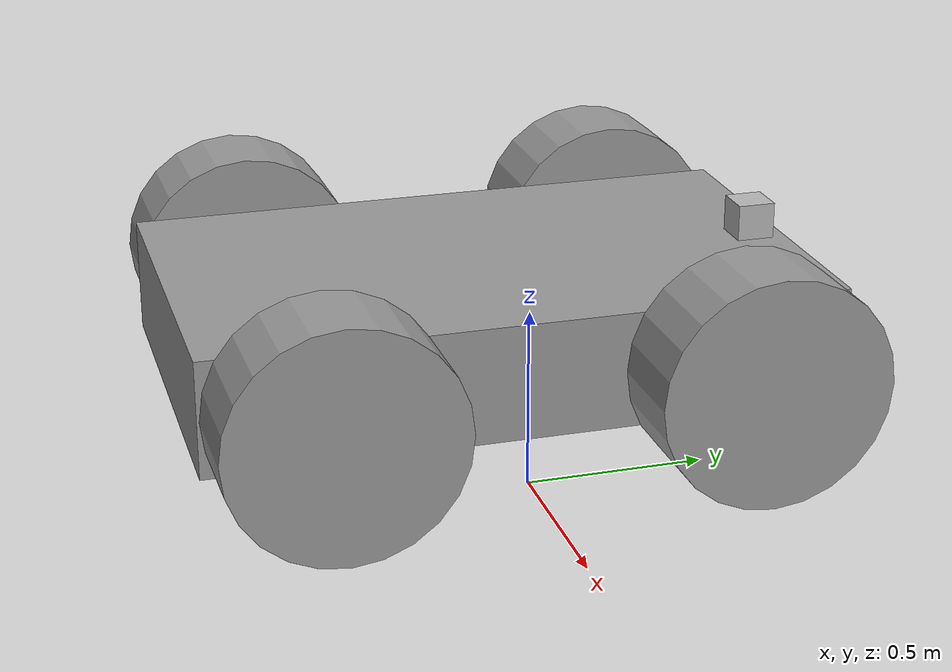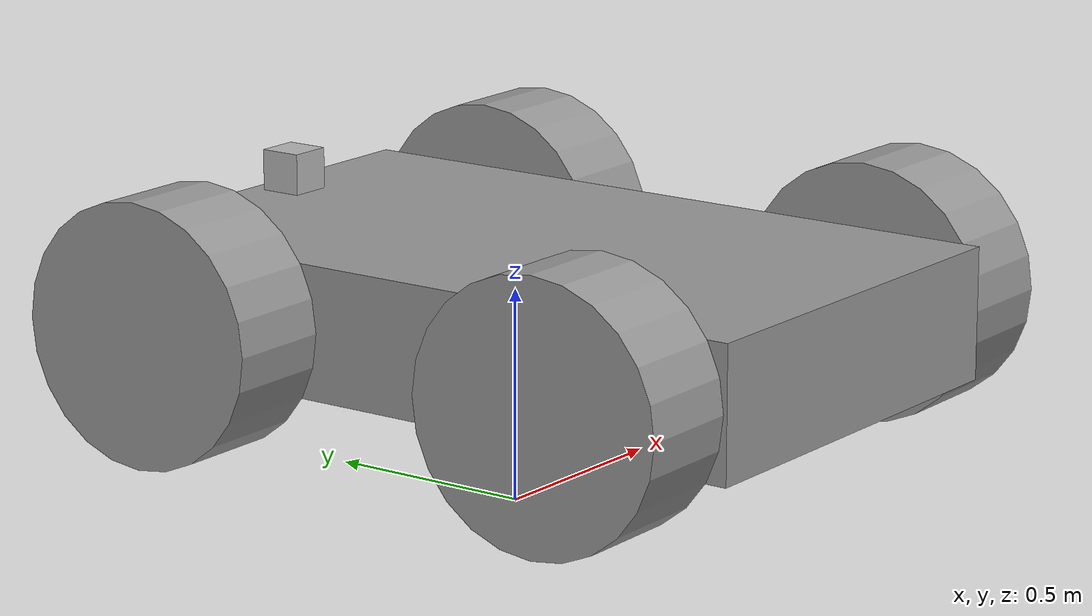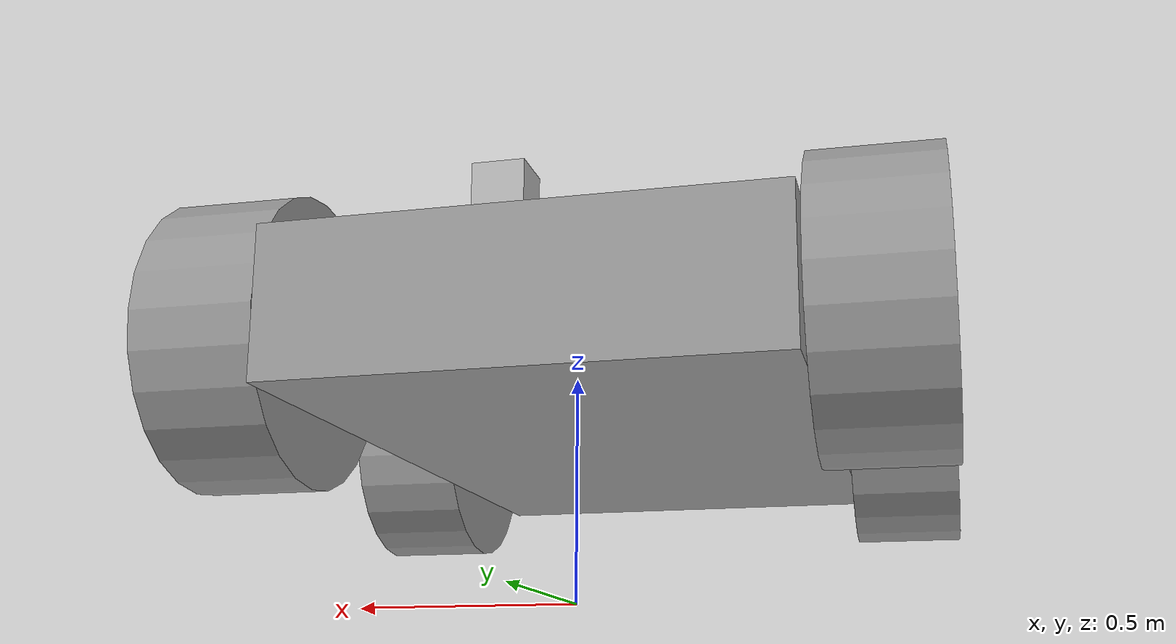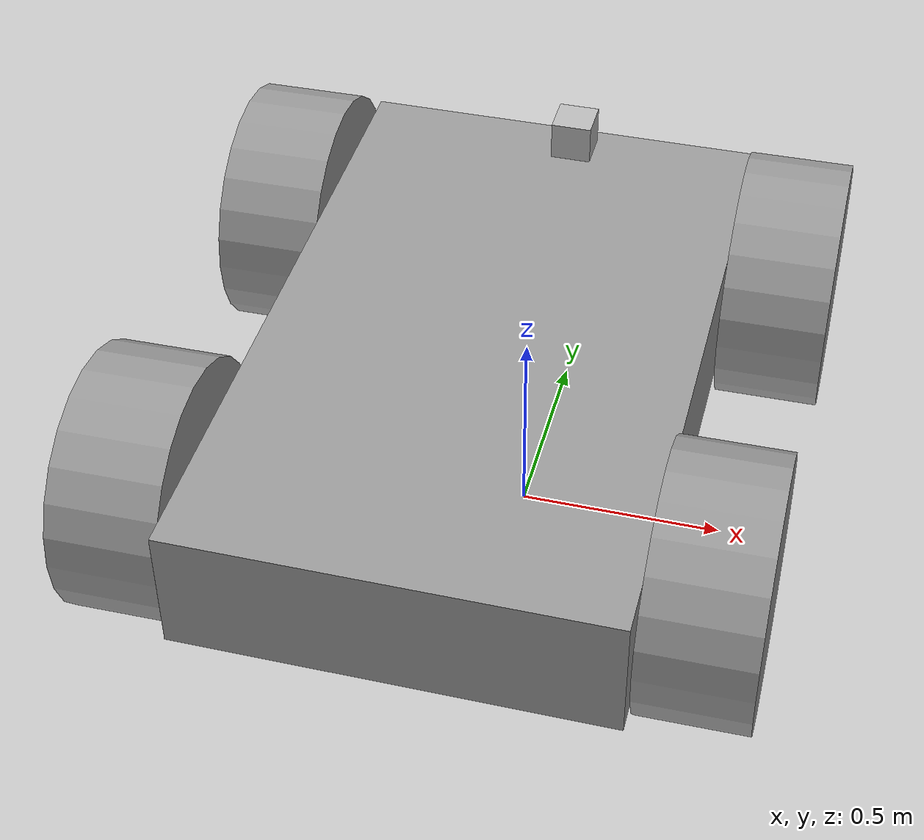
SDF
<?xml version='1.0'?>
<sdf version='1.7'>
  <model name='car-test'>
    <link name='link_2'>
      <inertial>
        <mass>0.506765</mass>
        <inertia>
          <ixx>0.12085</ixx>
          <ixy>0</ixy>
          <ixz>0</ixz>
          <iyy>0.0461514</iyy>
          <iyz>0</iyz>
          <izz>0.159159</izz>
        </inertia>
        <pose>0 0 0 0 -0 0</pose>
      </inertial>
      <pose>-0.068798 -0.11996 0.5 0 -0 0</pose>
      <gravity>1</gravity>
      <self_collide>0</self_collide>
      <kinematic>0</kinematic>
      <enable_wind>0</enable_wind>
      <visual name='visual'>
        <pose>0 0 0 0 -0 0</pose>
        <geometry>
          <box>
            <size>1 1.66398 0.304712</size>
          </box>
        </geometry>
        <material>
          <lighting>1</lighting>
          <script>
            <uri>file://media/materials/scripts/gazebo.material</uri>
            <name>Gazebo/Grey</name>
          </script>
          <shader type='pixel'>
            <normal_map>__default__</normal_map>
          </shader>
          <ambient>0.3 0.3 0.3 1</ambient>
          <diffuse>0.7 0.7 0.7 1</diffuse>
          <specular>0.01 0.01 0.01 1</specular>
          <emissive>0 0 0 1</emissive>
        </material>
        <transparency>0</transparency>
        <cast_shadows>1</cast_shadows>
      </visual>
      <collision name='collision'>
        <laser_retro>0</laser_retro>
        <max_contacts>10</max_contacts>
        <pose>0 0 0 0 -0 0</pose>
        <geometry>
          <box>
            <size>1 1.66398 0.304712</size>
          </box>
        </geometry>
        <surface>
          <friction>
            <ode>
              <mu>1</mu>
              <mu2>1</mu2>
              <fdir1>0 0 0</fdir1>
              <slip1>0</slip1>
              <slip2>0</slip2>
            </ode>
            <torsional>
              <coefficient>1</coefficient>
              <patch_radius>0</patch_radius>
              <surface_radius>0</surface_radius>
              <use_patch_radius>1</use_patch_radius>
              <ode>
                <slip>0</slip>
              </ode>
            </torsional>
          </friction>
          <bounce>
            <restitution_coefficient>0</restitution_coefficient>
            <threshold>1e+06</threshold>
          </bounce>
          <contact>
            <collide_without_contact>0</collide_without_contact>
            <collide_without_contact_bitmask>1</collide_without_contact_bitmask>
            <collide_bitmask>1</collide_bitmask>
            <ode>
              <soft_cfm>0</soft_cfm>
              <soft_erp>0.2</soft_erp>
              <kp>1e+13</kp>
              <kd>1</kd>
              <max_vel>0.01</max_vel>
              <min_depth>0</min_depth>
            </ode>
            <bullet>
              <split_impulse>1</split_impulse>
              <split_impulse_penetration_threshold>-0.01</split_impulse_penetration_threshold>
              <soft_cfm>0</soft_cfm>
              <soft_erp>0.2</soft_erp>
              <kp>1e+13</kp>
              <kd>1</kd>
            </bullet>
          </contact>
        </surface>
      </collision>
    </link>
    <link name='link_3'>
      <inertial>
        <mass>1</mass>
        <inertia>
          <ixx>0.145833</ixx>
          <ixy>0</ixy>
          <ixz>0</ixz>
          <iyy>0.145833</iyy>
          <iyz>0</iyz>
          <izz>0.125</izz>
        </inertia>
        <pose>0 0 0 0 -0 0</pose>
      </inertial>
      <pose>-0.69709 0.41618 0.5 1.57079 -9.6e-05 -1.55974</pose>
      <gravity>1</gravity>
      <self_collide>0</self_collide>
      <kinematic>0</kinematic>
      <enable_wind>0</enable_wind>
      <visual name='visual'>
        <pose>0 0 0 0 -0 0</pose>
        <geometry>
          <cylinder>
            <radius>0.3</radius>
            <length>0.25</length>
          </cylinder>
        </geometry>
        <material>
          <lighting>1</lighting>
          <script>
            <uri>file://media/materials/scripts/gazebo.material</uri>
            <name>Gazebo/Grey</name>
          </script>
          <shader type='pixel'>
            <normal_map>__default__</normal_map>
          </shader>
          <ambient>0.3 0.3 0.3 1</ambient>
          <diffuse>0.7 0.7 0.7 1</diffuse>
          <specular>0.01 0.01 0.01 1</specular>
          <emissive>0 0 0 1</emissive>
        </material>
        <transparency>0</transparency>
        <cast_shadows>1</cast_shadows>
      </visual>
      <collision name='collision'>
        <laser_retro>0</laser_retro>
        <max_contacts>10</max_contacts>
        <pose>0 0 0 0 -0 0</pose>
        <geometry>
          <cylinder>
            <radius>0.3</radius>
            <length>0.25</length>
          </cylinder>
        </geometry>
        <surface>
          <friction>
            <ode>
              <mu>1</mu>
              <mu2>1</mu2>
              <fdir1>0 0 0</fdir1>
              <slip1>0</slip1>
              <slip2>0</slip2>
            </ode>
            <torsional>
              <coefficient>1</coefficient>
              <patch_radius>0</patch_radius>
              <surface_radius>0</surface_radius>
              <use_patch_radius>1</use_patch_radius>
              <ode>
                <slip>0</slip>
              </ode>
            </torsional>
          </friction>
          <bounce>
            <restitution_coefficient>0</restitution_coefficient>
            <threshold>1e+06</threshold>
          </bounce>
          <contact>
            <collide_without_contact>0</collide_without_contact>
            <collide_without_contact_bitmask>1</collide_without_contact_bitmask>
            <collide_bitmask>1</collide_bitmask>
            <ode>
              <soft_cfm>0</soft_cfm>
              <soft_erp>0.2</soft_erp>
              <kp>1e+13</kp>
              <kd>1</kd>
              <max_vel>0.01</max_vel>
              <min_depth>0</min_depth>
            </ode>
            <bullet>
              <split_impulse>1</split_impulse>
              <split_impulse_penetration_threshold>-0.01</split_impulse_penetration_threshold>
              <soft_cfm>0</soft_cfm>
              <soft_erp>0.2</soft_erp>
              <kp>1e+13</kp>
              <kd>1</kd>
            </bullet>
          </contact>
        </surface>
      </collision>
    </link>
    <link name='link_3_clone'>
      <inertial>
        <mass>1</mass>
        <inertia>
          <ixx>0.145833</ixx>
          <ixy>0</ixy>
          <ixz>0</ixz>
          <iyy>0.145833</iyy>
          <iyz>0</iyz>
          <izz>0.125</izz>
        </inertia>
        <pose>0 0 0 0 -0 0</pose>
      </inertial>
      <pose>0.559529 0.41618 0.5 1.57079 -9.6e-05 -1.55974</pose>
      <gravity>1</gravity>
      <self_collide>0</self_collide>
      <kinematic>0</kinematic>
      <enable_wind>0</enable_wind>
      <visual name='visual'>
        <pose>0 0 0 0 -0 0</pose>
        <geometry>
          <cylinder>
            <radius>0.3</radius>
            <length>0.25</length>
          </cylinder>
        </geometry>
        <material>
          <lighting>1</lighting>
          <script>
            <uri>file://media/materials/scripts/gazebo.material</uri>
            <name>Gazebo/Grey</name>
          </script>
          <shader type='pixel'>
            <normal_map>__default__</normal_map>
          </shader>
          <ambient>0.3 0.3 0.3 1</ambient>
          <diffuse>0.7 0.7 0.7 1</diffuse>
          <specular>0.01 0.01 0.01 1</specular>
          <emissive>0 0 0 1</emissive>
        </material>
        <transparency>0</transparency>
        <cast_shadows>1</cast_shadows>
      </visual>
      <collision name='collision'>
        <laser_retro>0</laser_retro>
        <max_contacts>10</max_contacts>
        <pose>0 0 0 0 -0 0</pose>
        <geometry>
          <cylinder>
            <radius>0.3</radius>
            <length>0.25</length>
          </cylinder>
        </geometry>
        <surface>
          <friction>
            <ode>
              <mu>1</mu>
              <mu2>1</mu2>
              <fdir1>0 0 0</fdir1>
              <slip1>0</slip1>
              <slip2>0</slip2>
            </ode>
            <torsional>
              <coefficient>1</coefficient>
              <patch_radius>0</patch_radius>
              <surface_radius>0</surface_radius>
              <use_patch_radius>1</use_patch_radius>
              <ode>
                <slip>0</slip>
              </ode>
            </torsional>
          </friction>
          <bounce>
            <restitution_coefficient>0</restitution_coefficient>
            <threshold>1e+06</threshold>
          </bounce>
          <contact>
            <collide_without_contact>0</collide_without_contact>
            <collide_without_contact_bitmask>1</collide_without_contact_bitmask>
            <collide_bitmask>1</collide_bitmask>
            <ode>
              <soft_cfm>0</soft_cfm>
              <soft_erp>0.2</soft_erp>
              <kp>1e+13</kp>
              <kd>1</kd>
              <max_vel>0.01</max_vel>
              <min_depth>0</min_depth>
            </ode>
            <bullet>
              <split_impulse>1</split_impulse>
              <split_impulse_penetration_threshold>-0.01</split_impulse_penetration_threshold>
              <soft_cfm>0</soft_cfm>
              <soft_erp>0.2</soft_erp>
              <kp>1e+13</kp>
              <kd>1</kd>
            </bullet>
          </contact>
        </surface>
      </collision>
    </link>
    <link name='link_3_clone_clone'>
      <inertial>
        <mass>1</mass>
        <inertia>
          <ixx>0.145833</ixx>
          <ixy>0</ixy>
          <ixz>0</ixz>
          <iyy>0.145833</iyy>
          <iyz>0</iyz>
          <izz>0.125</izz>
        </inertia>
        <pose>0 0 0 0 -0 0</pose>
      </inertial>
      <pose>0.559529 -0.64502 0.5 1.57079 -9.6e-05 -1.55974</pose>
      <gravity>1</gravity>
      <self_collide>0</self_collide>
      <kinematic>0</kinematic>
      <enable_wind>0</enable_wind>
      <visual name='visual'>
        <pose>0 0 0 0 -0 0</pose>
        <geometry>
          <cylinder>
            <radius>0.3</radius>
            <length>0.25</length>
          </cylinder>
        </geometry>
        <material>
          <lighting>1</lighting>
          <script>
            <uri>file://media/materials/scripts/gazebo.material</uri>
            <name>Gazebo/Grey</name>
          </script>
          <shader type='pixel'>
            <normal_map>__default__</normal_map>
          </shader>
          <ambient>0.3 0.3 0.3 1</ambient>
          <diffuse>0.7 0.7 0.7 1</diffuse>
          <specular>0.01 0.01 0.01 1</specular>
          <emissive>0 0 0 1</emissive>
        </material>
        <transparency>0</transparency>
        <cast_shadows>1</cast_shadows>
      </visual>
      <collision name='collision'>
        <laser_retro>0</laser_retro>
        <max_contacts>10</max_contacts>
        <pose>0 0 0 0 -0 0</pose>
        <geometry>
          <cylinder>
            <radius>0.3</radius>
            <length>0.25</length>
          </cylinder>
        </geometry>
        <surface>
          <friction>
            <ode>
              <mu>1</mu>
              <mu2>1</mu2>
              <fdir1>0 0 0</fdir1>
              <slip1>0</slip1>
              <slip2>0</slip2>
            </ode>
            <torsional>
              <coefficient>1</coefficient>
              <patch_radius>0</patch_radius>
              <surface_radius>0</surface_radius>
              <use_patch_radius>1</use_patch_radius>
              <ode>
                <slip>0</slip>
              </ode>
            </torsional>
          </friction>
          <bounce>
            <restitution_coefficient>0</restitution_coefficient>
            <threshold>1e+06</threshold>
          </bounce>
          <contact>
            <collide_without_contact>0</collide_without_contact>
            <collide_without_contact_bitmask>1</collide_without_contact_bitmask>
            <collide_bitmask>1</collide_bitmask>
            <ode>
              <soft_cfm>0</soft_cfm>
              <soft_erp>0.2</soft_erp>
              <kp>1e+13</kp>
              <kd>1</kd>
              <max_vel>0.01</max_vel>
              <min_depth>0</min_depth>
            </ode>
            <bullet>
              <split_impulse>1</split_impulse>
              <split_impulse_penetration_threshold>-0.01</split_impulse_penetration_threshold>
              <soft_cfm>0</soft_cfm>
              <soft_erp>0.2</soft_erp>
              <kp>1e+13</kp>
              <kd>1</kd>
            </bullet>
          </contact>
        </surface>
      </collision>
    </link>
    <link name='link_3_clone_clone_0'>
      <inertial>
        <mass>1</mass>
        <inertia>
          <ixx>0.145833</ixx>
          <ixy>0</ixy>
          <ixz>0</ixz>
          <iyy>0.145833</iyy>
          <iyz>0</iyz>
          <izz>0.125</izz>
        </inertia>
        <pose>0 0 0 0 -0 0</pose>
      </inertial>
      <pose>-0.697092 -0.64502 0.5 1.57079 -9.6e-05 -1.55974</pose>
      <gravity>1</gravity>
      <self_collide>0</self_collide>
      <kinematic>0</kinematic>
      <enable_wind>0</enable_wind>
      <visual name='visual'>
        <pose>0 0 0 0 -0 0</pose>
        <geometry>
          <cylinder>
            <radius>0.3</radius>
            <length>0.25</length>
          </cylinder>
        </geometry>
        <material>
          <lighting>1</lighting>
          <script>
            <uri>file://media/materials/scripts/gazebo.material</uri>
            <name>Gazebo/Grey</name>
          </script>
          <shader type='pixel'>
            <normal_map>__default__</normal_map>
          </shader>
          <ambient>0.3 0.3 0.3 1</ambient>
          <diffuse>0.7 0.7 0.7 1</diffuse>
          <specular>0.01 0.01 0.01 1</specular>
          <emissive>0 0 0 1</emissive>
        </material>
        <transparency>0</transparency>
        <cast_shadows>1</cast_shadows>
      </visual>
      <collision name='collision'>
        <laser_retro>0</laser_retro>
        <max_contacts>10</max_contacts>
        <pose>0 0 0 0 -0 0</pose>
        <geometry>
          <cylinder>
            <radius>0.3</radius>
            <length>0.25</length>
          </cylinder>
        </geometry>
        <surface>
          <friction>
            <ode>
              <mu>1</mu>
              <mu2>1</mu2>
              <fdir1>0 0 0</fdir1>
              <slip1>0</slip1>
              <slip2>0</slip2>
            </ode>
            <torsional>
              <coefficient>1</coefficient>
              <patch_radius>0</patch_radius>
              <surface_radius>0</surface_radius>
              <use_patch_radius>1</use_patch_radius>
              <ode>
                <slip>0</slip>
              </ode>
            </torsional>
          </friction>
          <bounce>
            <restitution_coefficient>0</restitution_coefficient>
            <threshold>1e+06</threshold>
          </bounce>
          <contact>
            <collide_without_contact>0</collide_without_contact>
            <collide_without_contact_bitmask>1</collide_without_contact_bitmask>
            <collide_bitmask>1</collide_bitmask>
            <ode>
              <soft_cfm>0</soft_cfm>
              <soft_erp>0.2</soft_erp>
              <kp>1e+13</kp>
              <kd>1</kd>
              <max_vel>0.01</max_vel>
              <min_depth>0</min_depth>
            </ode>
            <bullet>
              <split_impulse>1</split_impulse>
              <split_impulse_penetration_threshold>-0.01</split_impulse_penetration_threshold>
              <soft_cfm>0</soft_cfm>
              <soft_erp>0.2</soft_erp>
              <kp>1e+13</kp>
              <kd>1</kd>
            </bullet>
          </contact>
        </surface>
      </collision>
    </link>
    <model name='camera'>
      <pose>-0.025266 0.624599 0.69875 0 -0 0</pose>
      <link name='link'>
        <inertial>
          <mass>0.1</mass>
          <inertia>
            <ixx>0.000166667</ixx>
            <iyy>0.000166667</iyy>
            <izz>0.000166667</izz>
            <ixy>0</ixy>
            <ixz>0</ixz>
            <iyz>0</iyz>
          </inertia>
        </inertial>
        <collision name='collision'>
          <geometry>
            <box>
              <size>0.1 0.1 0.1</size>
            </box>
          </geometry>
        </collision>
        <visual name='visual'>
          <geometry>
            <box>
              <size>0.1 0.1 0.1</size>
            </box>
          </geometry>
        </visual>
        <sensor name='camera' type='camera'>
          <camera>
            <horizontal_fov>1.047</horizontal_fov>
            <image>
              <width>320</width>
              <height>240</height>
            </image>
            <clip>
              <near>0.1</near>
              <far>100</far>
            </clip>
          </camera>
          <always_on>1</always_on>
          <update_rate>30</update_rate>
          <visualize>1</visualize>
        </sensor>
      </link>
    </model>
    <joint name='link_2_JOINT_1' type='revolute'>
      <parent>link_2</parent>
      <child>link_3</child>
      <pose>0 0 0 0 -0 0</pose>
      <axis>
        <xyz>0 0 1</xyz>
        <limit>
          <lower>-1.79769e+308</lower>
          <upper>1.79769e+308</upper>
          <effort>-1</effort>
          <velocity>-1</velocity>
        </limit>
        <dynamics>
          <spring_reference>0</spring_reference>
          <spring_stiffness>0</spring_stiffness>
          <damping>0</damping>
          <friction>0</friction>
        </dynamics>
      </axis>
      <physics>
        <ode>
          <limit>
            <cfm>0</cfm>
            <erp>0.2</erp>
          </limit>
          <suspension>
            <cfm>0</cfm>
            <erp>0.2</erp>
          </suspension>
        </ode>
      </physics>
    </joint>
    <joint name='link_2_JOINT_2' type='revolute'>
      <parent>link_2</parent>
      <child>link_3_clone_clone_0</child>
      <pose>0 0 0 0 -0 0</pose>
      <axis>
        <xyz>0 0 1</xyz>
        <limit>
          <lower>-1.79769e+308</lower>
          <upper>1.79769e+308</upper>
          <effort>-1</effort>
          <velocity>-1</velocity>
        </limit>
        <dynamics>
          <spring_reference>0</spring_reference>
          <spring_stiffness>0</spring_stiffness>
          <damping>0</damping>
          <friction>0</friction>
        </dynamics>
      </axis>
      <physics>
        <ode>
          <limit>
            <cfm>0</cfm>
            <erp>0.2</erp>
          </limit>
          <suspension>
            <cfm>0</cfm>
            <erp>0.2</erp>
          </suspension>
        </ode>
      </physics>
    </joint>
    <joint name='link_2_JOINT_3' type='revolute'>
      <parent>link_2</parent>
      <child>link_3_clone_clone</child>
      <pose>0 0 0 0 -0 0</pose>
      <axis>
        <xyz>0 0 1</xyz>
        <limit>
          <lower>-1.79769e+308</lower>
          <upper>1.79769e+308</upper>
          <effort>-1</effort>
          <velocity>-1</velocity>
        </limit>
        <dynamics>
          <spring_reference>0</spring_reference>
          <spring_stiffness>0</spring_stiffness>
          <damping>0</damping>
          <friction>0</friction>
        </dynamics>
      </axis>
      <physics>
        <ode>
          <limit>
            <cfm>0</cfm>
            <erp>0.2</erp>
          </limit>
          <suspension>
            <cfm>0</cfm>
            <erp>0.2</erp>
          </suspension>
        </ode>
      </physics>
    </joint>
    <joint name='link_2_JOINT_4' type='revolute'>
      <parent>link_2</parent>
      <child>link_3_clone</child>
      <pose>0 0 0 0 -0 0</pose>
      <axis>
        <xyz>0 0 1</xyz>
        <limit>
          <lower>-1.79769e+308</lower>
          <upper>1.79769e+308</upper>
          <effort>-1</effort>
          <velocity>-1</velocity>
        </limit>
        <dynamics>
          <spring_reference>0</spring_reference>
          <spring_stiffness>0</spring_stiffness>
          <damping>0</damping>
          <friction>0</friction>
        </dynamics>
      </axis>
      <physics>
        <ode>
          <limit>
            <cfm>0</cfm>
            <erp>0.2</erp>
          </limit>
          <suspension>
            <cfm>0</cfm>
            <erp>0.2</erp>
          </suspension>
        </ode>
      </physics>
    </joint>
    <static>0</static>
    <allow_auto_disable>1</allow_auto_disable>

    <plugin name='diff_drive' filename='libgazebo_ros_diff_drive.so'>

      <ros>
        <namespace>/kinangreat</namespace>
        <remapping>cmd_vel:=cmd_demo</remapping>
        <remapping>odom:=odom_demo</remapping>
      </ros>

      <!-- wheels -->
      <left_joint>link_2_JOINT_1</left_joint>
      <right_joint>link_2_JOINT_2</right_joint>

      <!-- kinematics -->
      <wheel_separation>1.25</wheel_separation>
      <wheel_diameter>0.6</wheel_diameter>

      <!-- limits -->
      <max_wheel_torque>20</max_wheel_torque>
      <max_wheel_acceleration>1.0</max_wheel_acceleration>

      <!-- output -->
      <publish_odom>true</publish_odom>
      <publish_odom_tf>true</publish_odom_tf>
      <publish_wheel_tf>true</publish_wheel_tf>

      <odometry_frame>odom_demo</odometry_frame>
      <robot_base_frame>chassis</robot_base_frame>

    </plugin>

    <plugin name='diff_drive' filename='libgazebo_ros_diff_drive.so'>

      <ros>
        <namespace>/kinanside</namespace>
        <remapping>cmd_vel:=cmd_demo</remapping>
        <remapping>odom:=odom_demo</remapping>
      </ros>

      <!-- wheels -->
      <left_joint>link_2_JOINT_3</left_joint>
      <right_joint>link_2_JOINT_4</right_joint>

      <!-- kinematics -->
      <wheel_separation>1.25</wheel_separation>
      <wheel_diameter>0.6</wheel_diameter>

      <!-- limits -->
      <max_wheel_torque>20</max_wheel_torque>
      <max_wheel_acceleration>1.0</max_wheel_acceleration>

      <!-- output -->
      <publish_odom>true</publish_odom>
      <publish_odom_tf>true</publish_odom_tf>
      <publish_wheel_tf>true</publish_wheel_tf>

      <odometry_frame>odom_demo</odometry_frame>
      <robot_base_frame>chassis</robot_base_frame>

    </plugin>

  </model>
</sdf>
